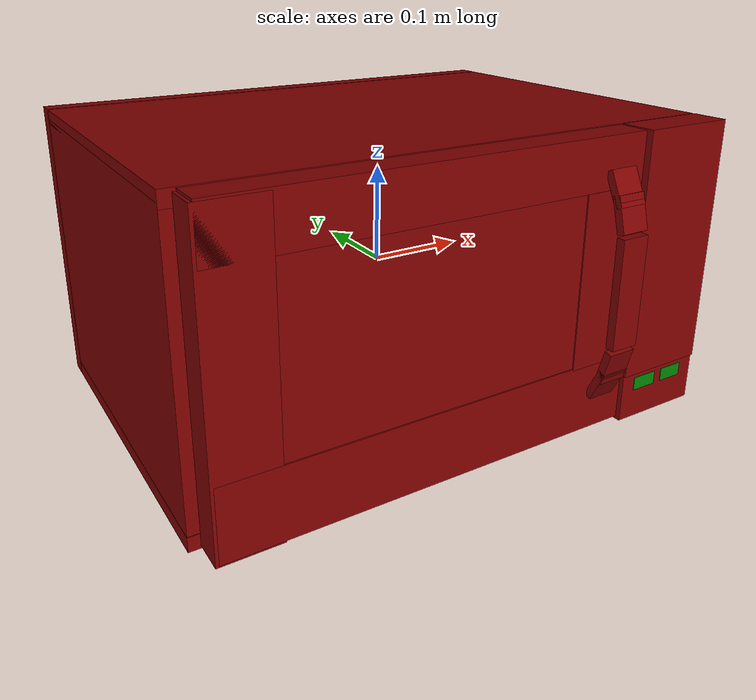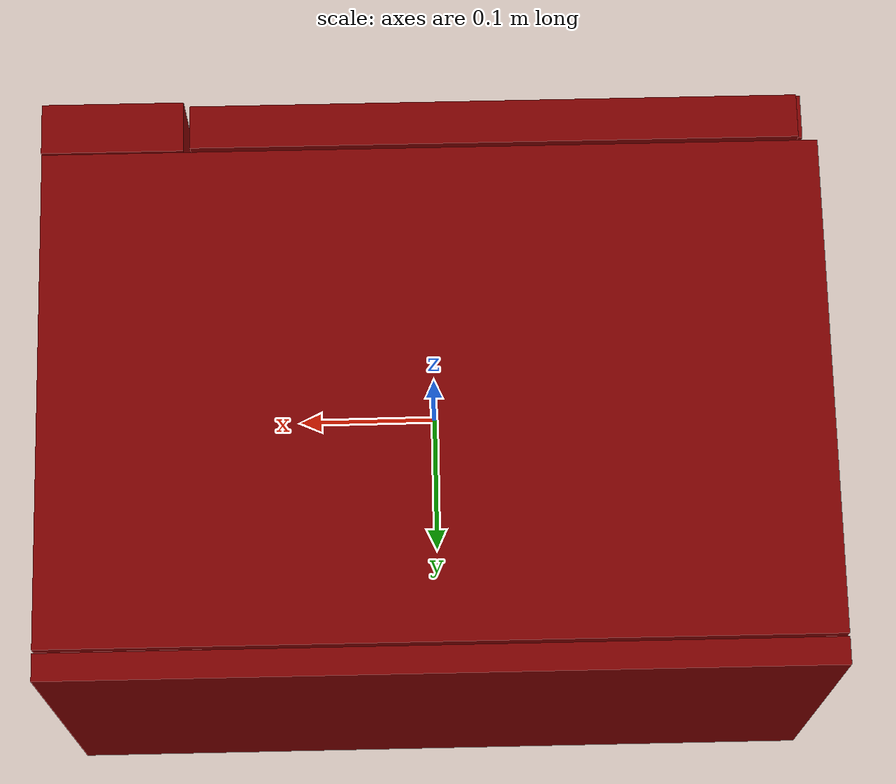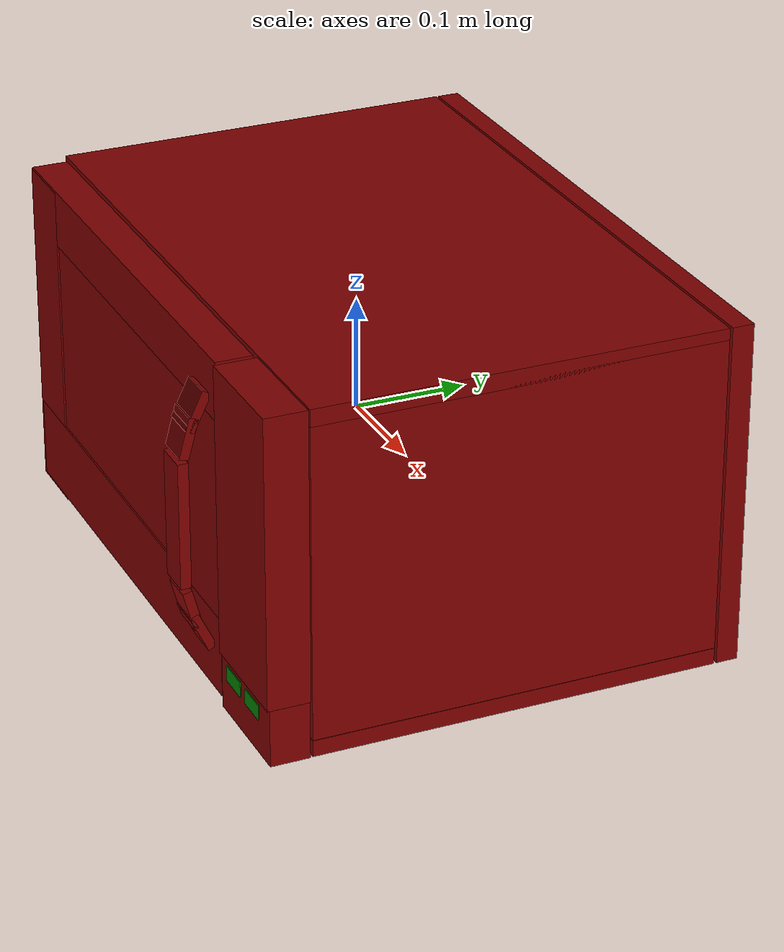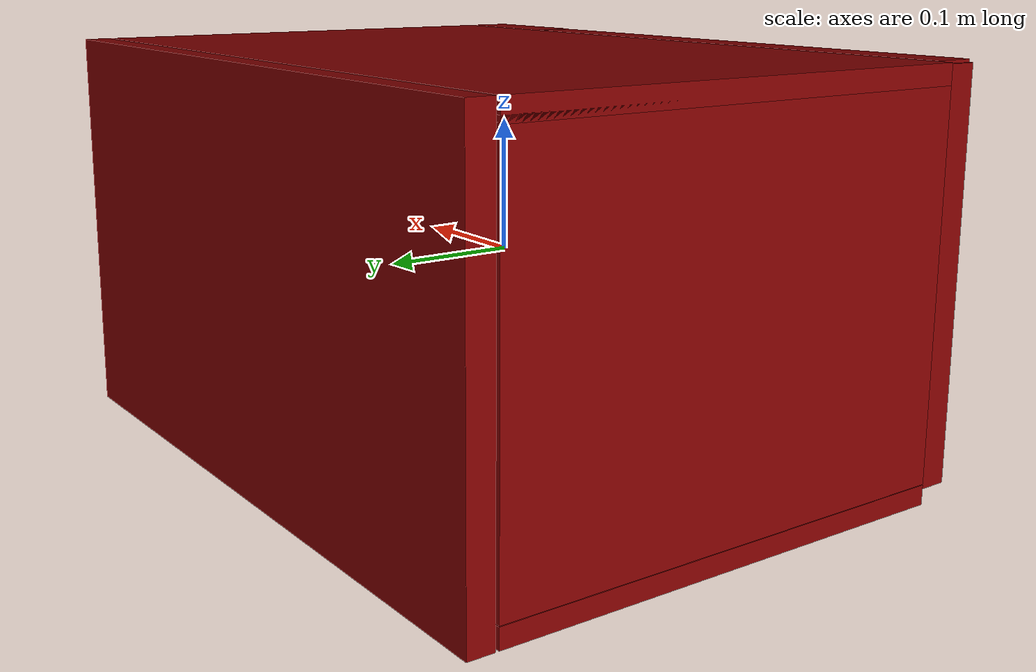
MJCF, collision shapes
<?xml version='1.0' encoding='UTF-8'?>
<mujoco model="model">
  <option timestep="0.002" gravity="0.0 0.0 -9.81"/>
  <compiler angle="radian"/>
  <asset>
    <mesh file="visuals/door.obj" name="door_vis"/>
    <mesh file="visuals/door_Clear.obj" name="door_Clear_vis"/>
    <mesh file="visuals/Body001.obj" name="Body001_vis"/>
    <mesh file="visuals/Disc001.obj" name="Disc001_vis"/>
    <texture file="visuals/T_BC001.png" name="Body001_material" type="2d"/>
    <material name="Body001_material" rgba="1 1 1 1.0" texture="Body001_material" shininess="1" specular="1"/>
    <texture file="visuals/T_BC001.png" name="door_material" type="2d"/>
    <material name="door_material" rgba="1 1 1 1.0" texture="door_material" shininess="1" specular="1"/>
    <texture file="visuals/T_BC001.png" name="door_Clear_material" type="2d"/>
    <material name="door_Clear_material" rgba="1 1 1 0.75" texture="door_Clear_material" shininess="0.5" specular="0.3103448502657381"/>
    <texture file="visuals/T_BC001.png" name="Disc001_material" type="2d"/>
    <material name="Disc001_material" rgba="1 1 1 1.0" texture="Disc001_material" shininess="0.5" specular="0.5"/>
  </asset>
  <default>
    <default class="visual">
      <geom conaffinity="0" contype="0" group="1" type="mesh"/>
    </default>
    <default class="collision">
      <geom group="0" rgba="0.5 0 0 0.5"/>
    </default>
    <default class="spawn">
      <geom group="0" rgba="1 1 1 0.5" contype="0" conaffinity="0"/>
      <site group="0" rgba="1 1 1 0.5"/>
    </default>
    <default class="region">
      <geom group="1" conaffinity="0" contype="0" rgba="0 1 0 0"/>
    </default>
  </default>
  <worldbody>
    <body>
      <body name="object">
        <geom class="collision" type="box" pos="0.20590049028396606 -0.19734081625938416 -0.11382987350225449" size="0.0070345583371818066 0.014730608090758324 0.00044697566772811115" quat="0.5 0.5000001192092896 -0.49999985098838806 0.5" name="stop_button" rgba="0.0 0.5 0 0.5"/>
        <geom class="collision" type="box" pos="0.2449408322572708 -0.19734081625938416 -0.11386968195438385" size="0.006961233913898468 0.014120476320385933 0.00044231658102944493" quat="0.5 0.5000001192092896 -0.49999985098838806 0.5" name="start_button" rgba="0.0 0.5 0 0.5"/>
        <geom class="collision" type="cylinder" pos="-0.042376745492219925 0.020643752068281174 -0.12589839100837708" size="0.14108577370643616 0.0017042874824255705" quat="7.549790126404332e-08 0.0 0.0 1.0" name="tray" rgba="0 1 0 0.5"/>
        <geom mesh="Body001_vis" type="mesh" solimp="0.998 0.998 0.001" solref="0.001 1" friction="0.95 0.3 0.1" class="visual" material="Body001_material"/>
        <geom class="collision" type="box" pos="-0.0002604006149340421 0.21383105218410492 1.30385160446167e-08" size="0.27816155552864075 0.009735136292874813 0.15329015254974365" quat="1.0 0.0 0.0 0.0"/>
        <geom class="collision" type="box" pos="-0.0002604006149340421 0.021295780315995216 0.14576677978038788" size="0.27816155552864075 0.007523393724113703 0.1804066151380539" quat="0.7071068286895752 0.7071067690849304 -1.5700922994638892e-16 -1.528541381711287e-23"/>
        <geom class="collision" type="box" pos="-0.0002604176406748593 0.021295839920639992 -0.1460084170103073" size="0.27816155552864075 0.00728168711066246 0.18040655553340912" quat="0.7071068286895752 0.7071067690849304 -1.5700922994638892e-16 -1.528541381711287e-23"/>
        <geom class="collision" type="box" pos="-0.27124154567718506 0.02129584737122059 0.002404293045401573" size="0.1406468003988266 0.007180430460721254 0.1804065704345703" quat="0.5 0.5 0.4999999701976776 -0.5"/>
        <geom class="collision" type="box" pos="0.22054241597652435 0.021295825019478798 0.002404291182756424" size="0.1406467854976654 0.057358741760253906 0.1804065853357315" quat="0.5000001788139343 0.5 0.5 -0.49999985098838806"/>
        <geom class="collision" type="box" pos="0.22747685015201569 -0.17910438776016235 0.02543068677186966" size="0.1278594732284546 0.05094514042139053 0.01858527772128582" quat="0.5000001192092896 0.5 0.5 -0.49999991059303284"/>
        <geom class="collision" type="box" pos="0.2274768352508545 -0.17860771715641022 -0.1278872787952423" size="0.02540283277630806 0.05094512179493904 0.017127878963947296" quat="0.5000001192092896 0.5 0.5 -0.49999991059303284"/>
        <body name="door">
          <joint axis="0.0 0.0 1.0" pos="-0.2616746723651886 -0.17836123704910278 0.005805660039186478" limited="true" name="microjoint" range="-1.5707963267948966 0.0" type="hinge" damping="1" frictionloss="1" armature=".01" stiffness="0.05"/>
          <geom mesh="door_vis" type="mesh" solimp="0.998 0.998 0.001" solref="0.001 1" friction="0.95 0.3 0.1" class="visual" material="door_material"/>
          <geom class="collision" type="box" pos="-0.0465981550514698 -0.1783633679151535 0.12746277451515198" size="0.02582739293575287 0.2184533178806305 0.016050899401307106" quat="0.5000001192092896 0.4999999403953552 0.5000000596046448 -0.49999991059303284"/>
          <geom class="collision" type="box" pos="-0.0465981550514698 -0.1783633679151535 -0.11089730262756348" size="0.036108314990997314 0.2184533178806305 0.016050854697823524" quat="0.5000001192092896 0.4999999403953552 0.5000000596046448 -0.49999991059303284"/>
          <geom class="collision" type="box" pos="-0.23706434667110443 -0.1783633977174759 0.0013598855584859848" size="0.031056726351380348 0.14970049262046814 0.01605089008808136" quat="1.8518180411319918e-07 9.017573177061422e-08 0.70710688829422 -0.7071066498756409"/>
          <geom class="collision" type="box" pos="0.1381400227546692 -0.1783633977174759 0.012431012466549873" size="0.03364603593945503 0.08911404758691788 0.01605089008808136" quat="1.8518180411319918e-07 9.017572466518686e-08 0.70710688829422 -0.7071066498756409"/>
          <geom class="collision" type="box" pos="0.14130213856697083 -0.20320026576519012 0.10494087636470795" size="0.015295693650841713 0.017972294241189957 0.004177053924649954" quat="2.683683817394922e-07 6.164569299471623e-08 0.5308552980422974 -0.8474624752998352"/>
          <geom class="collision" type="box" pos="0.14130213856697083 -0.21165719628334045 0.08284933120012283" size="0.015295693650841713 0.017972292378544807 0.004177053924649954" quat="1.78279620399735e-07 1.087527934373611e-07 0.6076867580413818 -0.7941768169403076"/>
          <geom class="collision" type="box" pos="0.14130213856697083 -0.20320026576519012 -0.0934830754995346" size="0.015295693650841713 0.017972294241189957 0.004177053924649954" quat="0.530855119228363 0.8474625945091248 -2.0659932431499328e-07 4.875904835444089e-08"/>
          <geom class="collision" type="box" pos="0.14130213856697083 -0.21165719628334045 -0.07139153778553009" size="0.015295693650841713 0.017972294241189957 0.004177053924649954" quat="0.6076866984367371 0.7941768765449524 -1.7942436159046338e-07 5.283703075065205e-08"/>
          <geom class="collision" type="box" pos="0.14130213856697083 -0.21732521057128906 0.006239965558052063" size="0.015295693650841713 0.0561002641916275 0.004628731869161129" quat="1.8518180411319918e-07 9.017572466518686e-08 0.70710688829422 -0.7071066498756409" name="door_handle_main"/>
          <geom class="collision" type="box" pos="-0.04550842195749283 -0.17843912541866302 0.0060067567974328995" size="0.1668378859758377 0.09752306342124939 0.007408058270812035" quat="1.851818325349086e-07 9.017570334890479e-08 0.70710688829422 -0.7071066498756409"/>
          <geom class="collision" type="box" pos="-0.04550842195749283 -0.19043384492397308 0.0060067567974328995" size="0.21330225467681885 0.14457102119922638 0.0025319319684058428" quat="1.8518176148063503e-07 9.017576729775101e-08 0.70710688829422 -0.7071066498756409" name="door_main"/>
          <body name="door_Clear">
            <geom mesh="door_Clear_vis" type="mesh" solimp="0.998 0.998 0.001" solref="0.001 1" friction="0.95 0.3 0.1" class="visual" material="door_Clear_material"/>
            <geom class="collision" type="box" pos="-0.04550842195749283 -0.17843912541866302 0.0060067567974328995" size="0.1668378859758377 0.09752306342124939 0.007408058270812035" quat="1.851818325349086e-07 9.017570334890479e-08 0.70710688829422 -0.7071066498756409"/>
          </body>
        </body>
        <body name="Disc001">
          <joint axis="0.0 0.0 1.0" pos="-0.042376745492219925 0.020643752068281174 -0.1282680630683899" limited="false" name="Disc001_joint" range="0 360" type="hinge" damping="1" frictionloss="1" armature=".01" stiffness="0.05"/>
          <geom mesh="Disc001_vis" type="mesh" solimp="0.998 0.998 0.001" solref="0.001 1" friction="0.95 0.3 0.1" class="visual" material="Disc001_material"/>
          <geom class="collision" type="cylinder" pos="-0.042376745492219925 0.020643752068281174 -0.13009494543075562" size="0.14108577370643616 0.0017042874824255705" quat="7.549790126404332e-08 0.0 0.0 1.0"/>
        </body>
        <geom class="region" name="reg_int" type="box" pos="-0.05024568736553192 0.021915145218372345 0.0039640069007873535" size="0.2063595334291458 0.17481470650434494 0.1270526180267334"/>
        <geom class="region" name="reg_main" type="box" pos="7.450580596923828e-09 0.01293829083442688 0.0" size="0.27942196822166443 0.21162786877155304 0.15429012274742127"/>
      <geom class="region" name="reg_tray" type="cylinder" pos="-0.042376745492219925 0.020643752068281174 0.003411260700784624" size="0.14108577370643616 0.12660536422673613"/></body>
    </body>
  </worldbody>
  <actuator>
    <motor name="microjoint_actuator" joint="microjoint" gear="10"/>
    <motor name="Disc001_joint_actuator" joint="Disc001_joint" gear="10"/>
  </actuator>
</mujoco>
